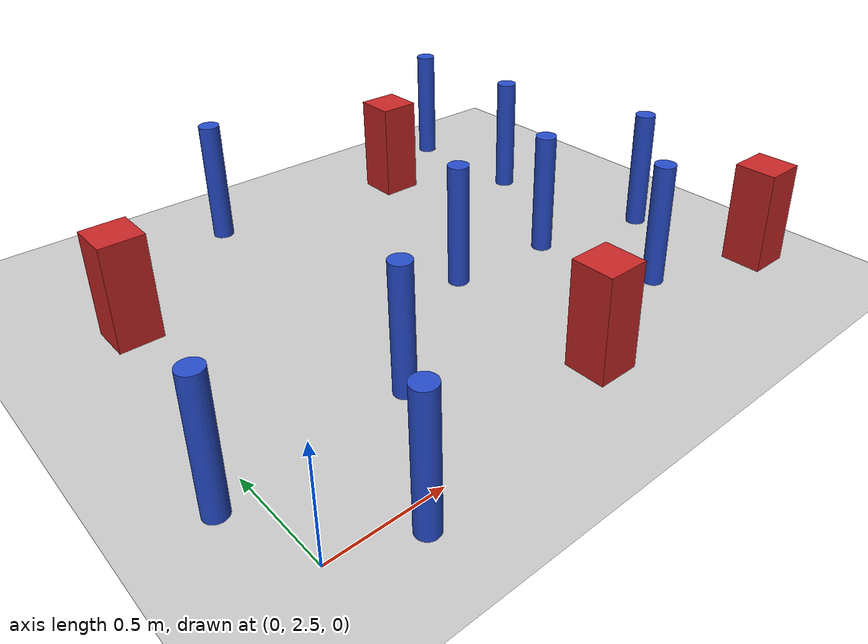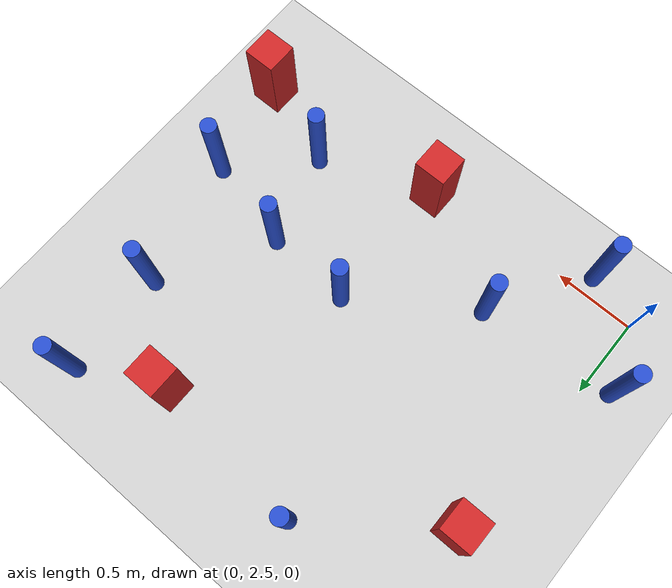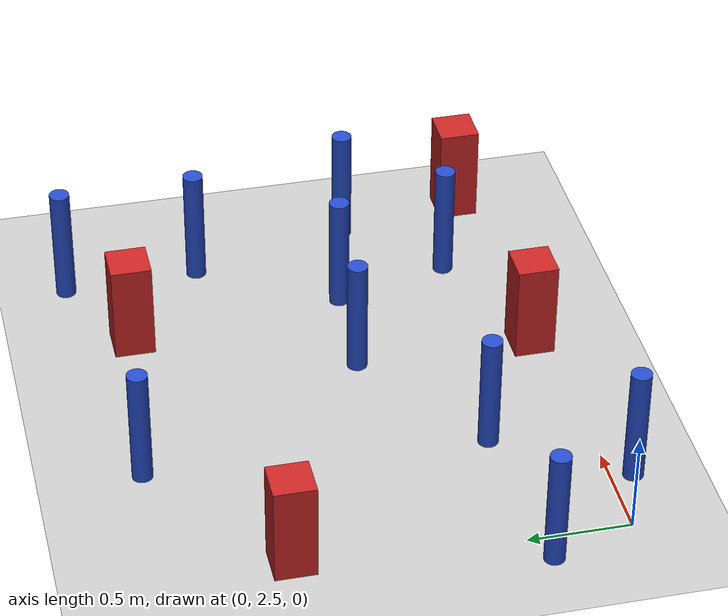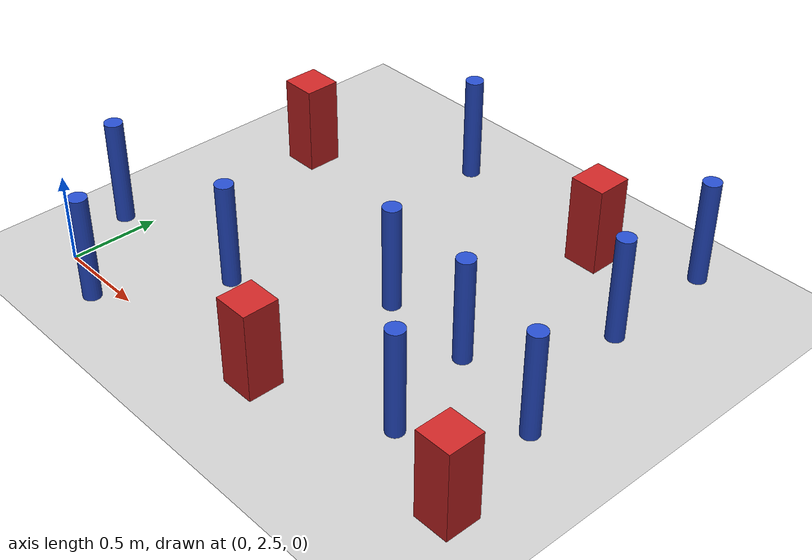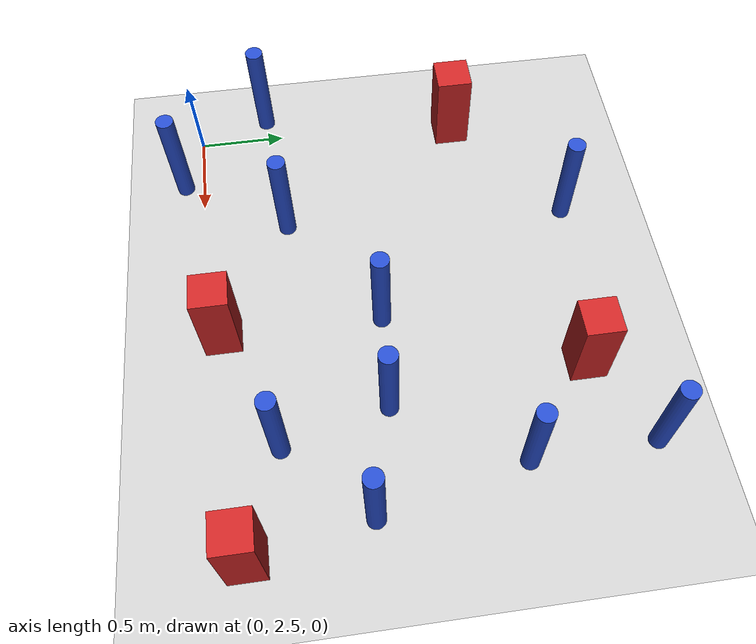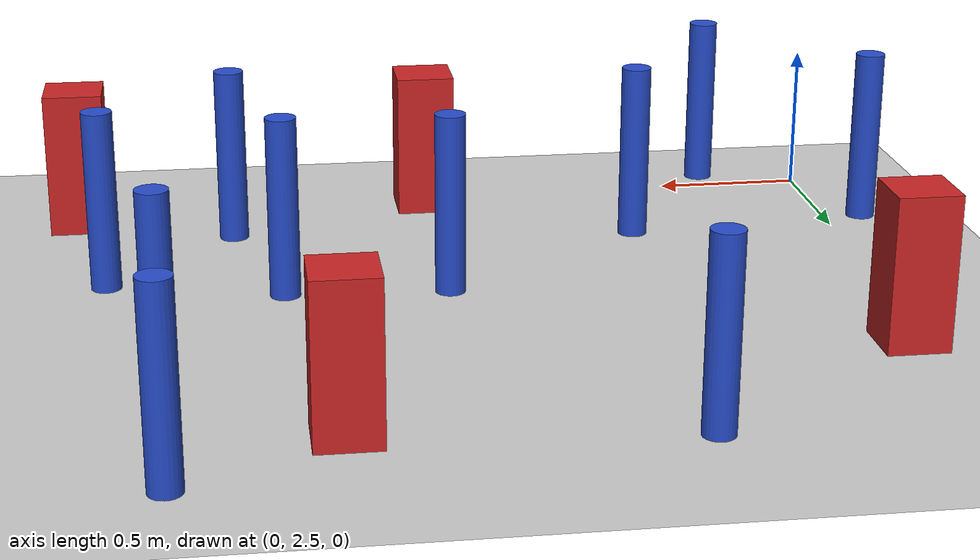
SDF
<sdf version="1.6">
 <world name="default">
  <model name="ground_plane">
   <static>1</static>
   <link name="link">
    <collision name="collision">
     <geometry><plane><normal>0 0 1</normal><size>100 100</size></plane></geometry>
     <surface><friction><ode><mu>100</mu><mu2>50</mu2></ode></friction></surface>
    </collision>
    <visual name="visual">
     <cast_shadows>0</cast_shadows>
     <geometry><plane><normal>0 0 1</normal><size>100 100</size></plane></geometry>
     <material>
      <ambient>1.0 1.0 1.0 1.0</ambient>
      <diffuse>0.8 0.8 0.8 1.0</diffuse>
      <specular>0.01 0.01 0.01 1.000000</specular>
     </material>
    </visual>
   </link>
  </model>
  <model name="pole_obstacle2">
   <static>true</static>
   <pose>0.819496799136 4.62784441274 -3.09024884793e-07 -7.19054271912e-07 -2.11315075129e-07 -1.93935509261e-07</pose>
   <link name="link">
    <pose>0 0 0.3 0 -0 0</pose>
    <inertial>
     <mass>1</mass>
     <inertia><ixx>0.145833</ixx><ixy>0</ixy><ixz>0</ixz><iyy>0.145833</iyy><iyz>0</iyz><izz>0.125</izz></inertia>
    </inertial>
    <collision name="collision">
     <geometry><cylinder><radius>0.05</radius><length>.6</length></cylinder></geometry>
    </collision>
    <visual name="visual">
     <geometry><cylinder><radius>0.05</radius><length>.6</length></cylinder></geometry>
     <material>
      <script><name>Gazebo/Blue</name><uri>file://media/materials/scripts/gazebo.material</uri></script>
     </material>
    </visual>
   </link>
  </model>
  <model name="square_post_obstacle13">
   <static>true</static>
   <pose>2.64534605135 2.66495597254 -4.36207812815e-07 3.75137919937e-06 9.77721102514e-07 2.47381364184e-05</pose>
   <link name="link">
    <pose>0 0 0.25 0 -0 0</pose>
    <inertial>
     <mass>100</mass>
     <inertia>
      <ixx>0.166667</ixx>
      <ixy>0</ixy>
      <ixz>0</ixz>
      <iyy>0.166667</iyy>
      <iyz>0</iyz>
      <izz>0.166667</izz>
     </inertia>
    </inertial>
    <collision name="collision"><geometry><box><size>.2 .2 .5</size></box></geometry></collision>
    <visual name="visual">
     <geometry><box><size>.2 .2 .5</size></box></geometry>
     <material>
      <script><name>Gazebo/Red</name><uri>file://media/materials/scripts/gazebo.material</uri></script>
     </material>
    </visual>
   </link>
  </model>
  <model name="pole_obstacle43">
   <static>true</static>
   <pose>0.717372340981 2.98848043081 -3.09024884793e-07 -7.19054271912e-07 -2.11315075129e-07 -1.93935509263e-07</pose>
   <link name="link">
    <pose>0 0 0.3 0 -0 0</pose>
    <inertial>
     <mass>1</mass>
     <inertia><ixx>0.145833</ixx><ixy>0</ixy><ixz>0</ixz><iyy>0.145833</iyy><iyz>0</iyz><izz>0.125</izz></inertia>
    </inertial>
    <collision name="collision">
     <geometry><cylinder><radius>0.05</radius><length>.6</length></cylinder></geometry>
    </collision>
    <visual name="visual">
     <geometry><cylinder><radius>0.05</radius><length>.6</length></cylinder></geometry>
     <material>
      <script><name>Gazebo/Blue</name><uri>file://media/materials/scripts/gazebo.material</uri></script>
     </material>
    </visual>
   </link>
  </model>
  <model name="square_post_obstacle49">
   <static>true</static>
   <pose>0.0841019868554 4.06808306231 -4.36207812815e-07 3.75137919937e-06 9.77721102514e-07 2.47381364184e-05</pose>
   <link name="link">
    <pose>0 0 0.25 0 -0 0</pose>
    <inertial>
     <mass>100</mass>
     <inertia>
      <ixx>0.166667</ixx>
      <ixy>0</ixy>
      <ixz>0</ixz>
      <iyy>0.166667</iyy>
      <iyz>0</iyz>
      <izz>0.166667</izz>
     </inertia>
    </inertial>
    <collision name="collision"><geometry><box><size>.2 .2 .5</size></box></geometry></collision>
    <visual name="visual">
     <geometry><box><size>.2 .2 .5</size></box></geometry>
     <material>
      <script><name>Gazebo/Red</name><uri>file://media/materials/scripts/gazebo.material</uri></script>
     </material>
    </visual>
   </link>
  </model>
  <model name="pole_obstacle76">
   <static>true</static>
   <pose>2.53124457961 3.29740542133 -3.09024884793e-07 -7.19054271912e-07 -2.11315075144e-07 -1.93935509271e-07</pose>
   <link name="link">
    <pose>0 0 0.3 0 -0 0</pose>
    <inertial>
     <mass>1</mass>
     <inertia><ixx>0.145833</ixx><ixy>0</ixy><ixz>0</ixz><iyy>0.145833</iyy><iyz>0</iyz><izz>0.125</izz></inertia>
    </inertial>
    <collision name="collision">
     <geometry><cylinder><radius>0.05</radius><length>.6</length></cylinder></geometry>
    </collision>
    <visual name="visual">
     <geometry><cylinder><radius>0.05</radius><length>.6</length></cylinder></geometry>
     <material>
      <script><name>Gazebo/Blue</name><uri>file://media/materials/scripts/gazebo.material</uri></script>
     </material>
    </visual>
   </link>
  </model>
  <model name="pole_obstacle107">
   <static>true</static>
   <pose>2.34064452299 4.10383345779 -3.09024884793e-07 -7.19054271912e-07 -2.11315075134e-07 -1.93935509266e-07</pose>
   <link name="link">
    <pose>0 0 0.3 0 -0 0</pose>
    <inertial>
     <mass>1</mass>
     <inertia><ixx>0.145833</ixx><ixy>0</ixy><ixz>0</ixz><iyy>0.145833</iyy><iyz>0</iyz><izz>0.125</izz></inertia>
    </inertial>
    <collision name="collision">
     <geometry><cylinder><radius>0.05</radius><length>.6</length></cylinder></geometry>
    </collision>
    <visual name="visual">
     <geometry><cylinder><radius>0.05</radius><length>.6</length></cylinder></geometry>
     <material>
      <script><name>Gazebo/Blue</name><uri>file://media/materials/scripts/gazebo.material</uri></script>
     </material>
    </visual>
   </link>
  </model>
  <model name="pole_obstacle122">
   <static>true</static>
   <pose>1.41979557181 3.46544027278 -3.09024884793e-07 -7.19054271912e-07 -2.11315075132e-07 -1.93935509263e-07</pose>
   <link name="link">
    <pose>0 0 0.3 0 -0 0</pose>
    <inertial>
     <mass>1</mass>
     <inertia><ixx>0.145833</ixx><ixy>0</ixy><ixz>0</ixz><iyy>0.145833</iyy><iyz>0</iyz><izz>0.125</izz></inertia>
    </inertial>
    <collision name="collision">
     <geometry><cylinder><radius>0.05</radius><length>.6</length></cylinder></geometry>
    </collision>
    <visual name="visual">
     <geometry><cylinder><radius>0.05</radius><length>.6</length></cylinder></geometry>
     <material>
      <script><name>Gazebo/Blue</name><uri>file://media/materials/scripts/gazebo.material</uri></script>
     </material>
    </visual>
   </link>
  </model>
  <model name="pole_obstacle125">
   <static>true</static>
   <pose>2.3202746071 4.77866252238 -3.09024884793e-07 -7.19054271912e-07 -2.11315075134e-07 -1.93935509266e-07</pose>
   <link name="link">
    <pose>0 0 0.3 0 -0 0</pose>
    <inertial>
     <mass>1</mass>
     <inertia><ixx>0.145833</ixx><ixy>0</ixy><ixz>0</ixz><iyy>0.145833</iyy><iyz>0</iyz><izz>0.125</izz></inertia>
    </inertial>
    <collision name="collision">
     <geometry><cylinder><radius>0.05</radius><length>.6</length></cylinder></geometry>
    </collision>
    <visual name="visual">
     <geometry><cylinder><radius>0.05</radius><length>.6</length></cylinder></geometry>
     <material>
      <script><name>Gazebo/Blue</name><uri>file://media/materials/scripts/gazebo.material</uri></script>
     </material>
    </visual>
   </link>
  </model>
  <model name="pole_obstacle131">
   <static>true</static>
   <pose>1.95421848574 3.43744038498 -3.09024884793e-07 -7.19054271912e-07 -2.11315075136e-07 -1.93935509265e-07</pose>
   <link name="link">
    <pose>0 0 0.3 0 -0 0</pose>
    <inertial>
     <mass>1</mass>
     <inertia><ixx>0.145833</ixx><ixy>0</ixy><ixz>0</ixz><iyy>0.145833</iyy><iyz>0</iyz><izz>0.125</izz></inertia>
    </inertial>
    <collision name="collision">
     <geometry><cylinder><radius>0.05</radius><length>.6</length></cylinder></geometry>
    </collision>
    <visual name="visual">
     <geometry><cylinder><radius>0.05</radius><length>.6</length></cylinder></geometry>
     <material>
      <script><name>Gazebo/Blue</name><uri>file://media/materials/scripts/gazebo.material</uri></script>
     </material>
    </visual>
   </link>
  </model>
  <model name="square_post_obstacle127">
   <static>true</static>
   <pose>1.41349608575 2.58986551488 -4.36207812815e-07 3.75137919937e-06 9.77721102514e-07 2.47381364184e-05</pose>
   <link name="link">
    <pose>0 0 0.25 0 -0 0</pose>
    <inertial>
     <mass>100</mass>
     <inertia>
      <ixx>0.166667</ixx>
      <ixy>0</ixy>
      <ixz>0</ixz>
      <iyy>0.166667</iyy>
      <iyz>0</iyz>
      <izz>0.166667</izz>
     </inertia>
    </inertial>
    <collision name="collision"><geometry><box><size>.2 .2 .5</size></box></geometry></collision>
    <visual name="visual">
     <geometry><box><size>.2 .2 .5</size></box></geometry>
     <material>
      <script><name>Gazebo/Red</name><uri>file://media/materials/scripts/gazebo.material</uri></script>
     </material>
    </visual>
   </link>
  </model>
  <model name="pole_obstacle133">
   <static>true</static>
   <pose>0.336181300725 2.39105926085 -3.09024884793e-07 -7.19054271912e-07 -2.11315075129e-07 -1.93935509263e-07</pose>
   <link name="link">
    <pose>0 0 0.3 0 -0 0</pose>
    <inertial>
     <mass>1</mass>
     <inertia><ixx>0.145833</ixx><ixy>0</ixy><ixz>0</ixz><iyy>0.145833</iyy><iyz>0</iyz><izz>0.125</izz></inertia>
    </inertial>
    <collision name="collision">
     <geometry><cylinder><radius>0.05</radius><length>.6</length></cylinder></geometry>
    </collision>
    <visual name="visual">
     <geometry><cylinder><radius>0.05</radius><length>.6</length></cylinder></geometry>
     <material>
      <script><name>Gazebo/Blue</name><uri>file://media/materials/scripts/gazebo.material</uri></script>
     </material>
    </visual>
   </link>
  </model>
  <model name="pole_obstacle134">
   <static>true</static>
   <pose>-0.138092802408 2.90990151172 -3.09024884848e-07 -7.19054271902e-07 -2.11315075202e-07 -1.93935509287e-07</pose>
   <link name="link">
    <pose>0 0 0.3 0 -0 0</pose>
    <inertial>
     <mass>1</mass>
     <inertia><ixx>0.145833</ixx><ixy>0</ixy><ixz>0</ixz><iyy>0.145833</iyy><iyz>0</iyz><izz>0.125</izz></inertia>
    </inertial>
    <collision name="collision">
     <geometry><cylinder><radius>0.05</radius><length>.6</length></cylinder></geometry>
    </collision>
    <visual name="visual">
     <geometry><cylinder><radius>0.05</radius><length>.6</length></cylinder></geometry>
     <material>
      <script><name>Gazebo/Blue</name><uri>file://media/materials/scripts/gazebo.material</uri></script>
     </material>
    </visual>
   </link>
  </model>
  <model name="pole_obstacle144">
   <static>true</static>
   <pose>2.10816100386 2.85783977278 -3.09024884793e-07 -7.19054271912e-07 -2.11315075144e-07 -1.93935509271e-07</pose>
   <link name="link">
    <pose>0 0 0.3 0 -0 0</pose>
    <inertial>
     <mass>1</mass>
     <inertia><ixx>0.145833</ixx><ixy>0</ixy><ixz>0</ixz><iyy>0.145833</iyy><iyz>0</iyz><izz>0.125</izz></inertia>
    </inertial>
    <collision name="collision">
     <geometry><cylinder><radius>0.05</radius><length>.6</length></cylinder></geometry>
    </collision>
    <visual name="visual">
     <geometry><cylinder><radius>0.05</radius><length>.6</length></cylinder></geometry>
     <material>
      <script><name>Gazebo/Blue</name><uri>file://media/materials/scripts/gazebo.material</uri></script>
     </material>
    </visual>
   </link>
  </model>
  <model name="square_post_obstacle204">
   <static>true</static>
   <pose>1.83257653344 4.51487561865 -4.36207812815e-07 3.75137919937e-06 9.77721102514e-07 2.47381364184e-05</pose>
   <link name="link">
    <pose>0 0 0.25 0 -0 0</pose>
    <inertial>
     <mass>100</mass>
     <inertia>
      <ixx>0.166667</ixx>
      <ixy>0</ixy>
      <ixz>0</ixz>
      <iyy>0.166667</iyy>
      <iyz>0</iyz>
      <izz>0.166667</izz>
     </inertia>
    </inertial>
    <collision name="collision"><geometry><box><size>.2 .2 .5</size></box></geometry></collision>
    <visual name="visual">
     <geometry><box><size>.2 .2 .5</size></box></geometry>
     <material>
      <script><name>Gazebo/Red</name><uri>file://media/materials/scripts/gazebo.material</uri></script>
     </material>
    </visual>
   </link>
  </model>
 </world>
</sdf>
